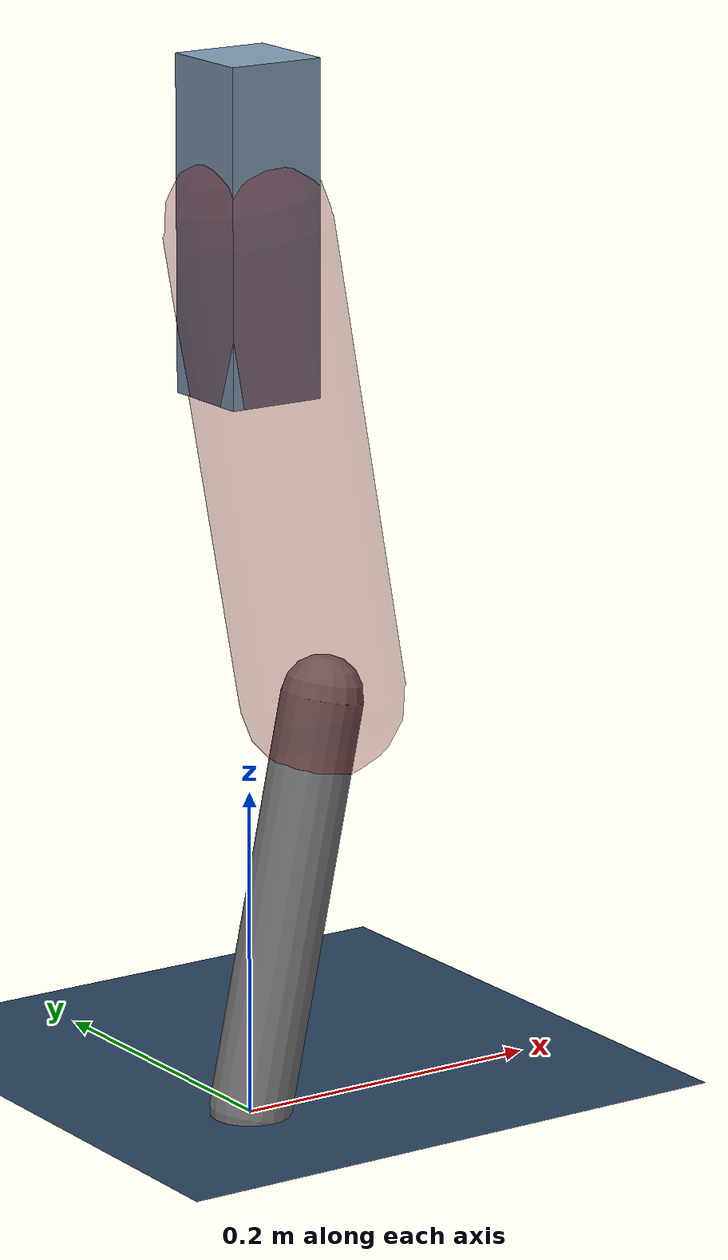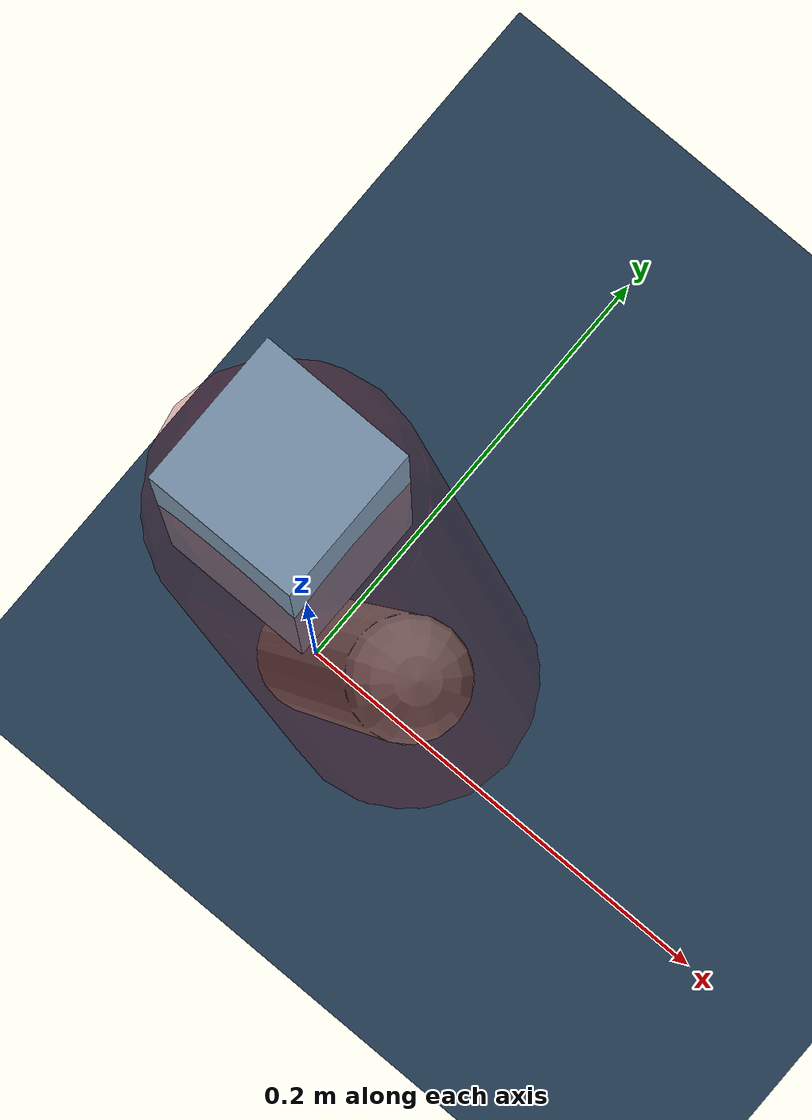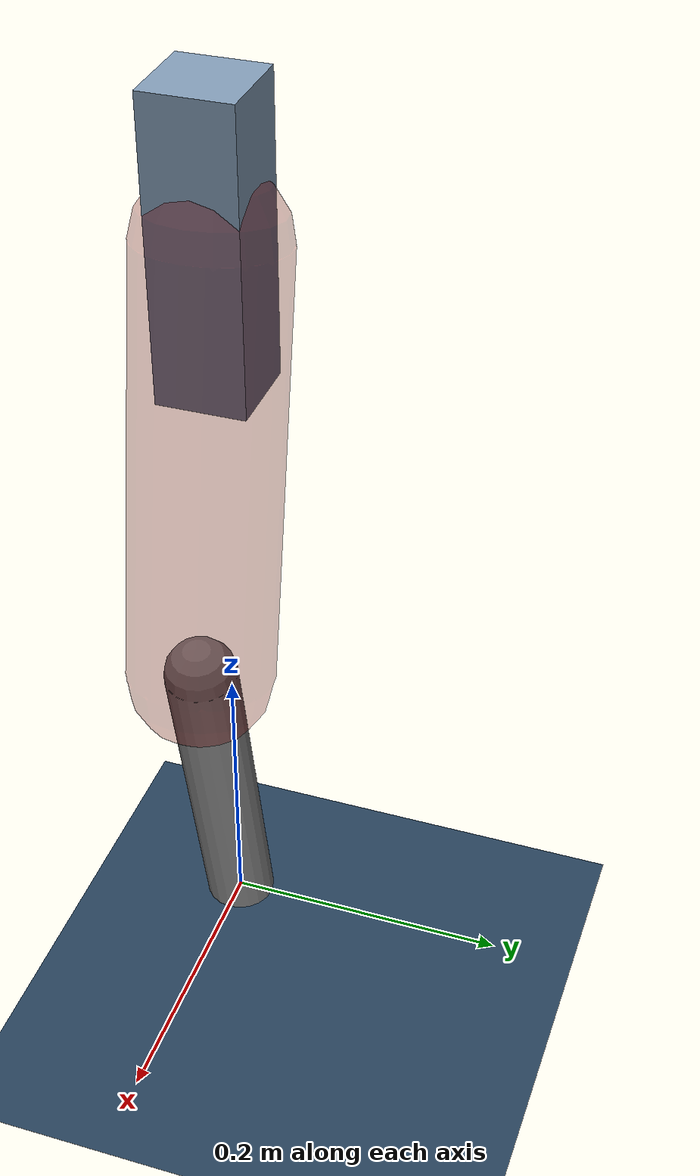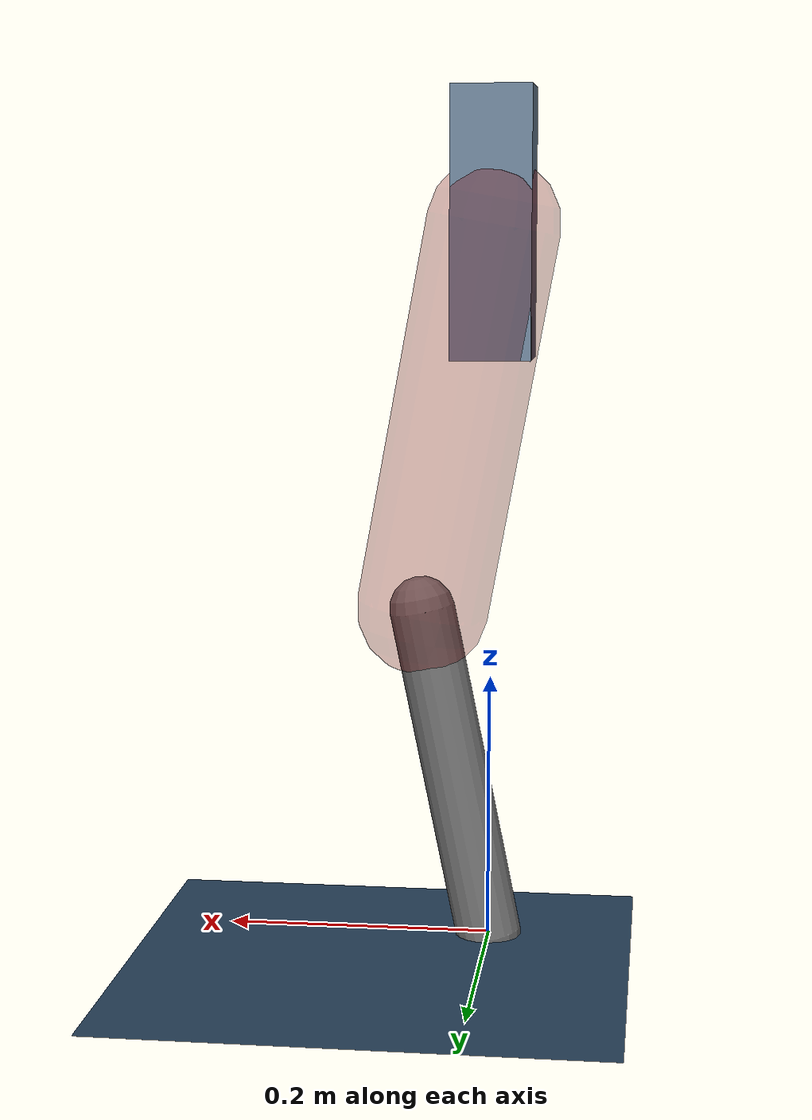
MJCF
<mujoco model="Hopper2D">
	<compiler inertiafromgeom="true" angle="radian" />
	<option timestep="0.001" integrator="implicit" cone="elliptic" solver="Newton" tolerance="1e-10" />

	<default>
		<geom contype="1" conaffinity="1" condim="3" friction="2 0.005 0.0001" solref="0.005 1" />
		<joint limited="true" damping="0.1" />
	</default>

	<asset>
		<texture name="skybox" type="skybox" builtin="gradient" rgb1=".4 .6 .8" rgb2="0 0 0" width="800" height="800" />
		<texture name="grid" type="2d" builtin="checker" rgb1=".1 .2 .3" rgb2=".2 .3 .4" width="300" height="300" mark="edge" markrgb=".2 .3 .4" />
		<material name="ground" texture="grid" texrepeat="1 1" texuniform="true" reflectance="0.1" />
		<material name="leg" rgba="0.5 0.6 0.7 1" />
	</asset>

	<worldbody>

		<geom name="floor" type="plane" size="5 5 0.25" material="ground" />

		<light directional="false" diffuse="0.8 0.8 0.8" specular="0.3 0.3 0.3" pos="0 0 2" dir="0 0 -1" />
		<light mode="targetbodycom" target="base" directional="false" diffuse="0.8 0.8 0.8" specular="0.3 0.3 0.3" pos="0 0 2" dir="0 0 -1" />

		<camera name="fixed" pos="0 -2 1" xyaxes="1 0 0 0 0 1" />
		<camera name="tracking" mode="trackcom" pos="0 -3 1" />

		<body name="root" pos="0 0 0.5410564249908898">
			<joint name="slide_x" type="slide" axis="1 0 0" range="-100 100" />
			<joint name="slide_z" type="slide" axis="0 0 1" range="0 10" />

			<body name="base" pos="0 0 0">
				<geom name="torso" type="box" size="0.03 0.03 0.1" mass="1.687" material="leg" />

				<body name="link1" pos="0 0 0" euler="0 1.392679528151662 0">
					<joint type="hinge" axis="0 -1 0" pos="0 0 0" name="hinge1" limited="true" range="-3.14 3.14" stiffness="0" damping="0.1" />
					<geom name="thigh" type="capsule" fromto="0 0 0 0.294211414437912 0 0" size="0.05" rgba="0.5 0 0 0.3" mass="0.9731708189823625" />

					<body name="link2" pos="0.294211414437912 0 0" euler="0 0.38248905852841275 0">
						<joint type="hinge" axis="0 -1 0" pos="0 0 0" name="hinge2" limited="true" range="-3.14 3.14" stiffness="0" damping="0.1" />
						<geom name="shank" type="capsule" fromto="0 0 0 0.25684501055297776 0 0" size="0.025" mass="0.4481760084423822" />

					</body>
				</body>
			</body>
		</body>
	</worldbody>

	<actuator>
		<motor name="torque1" joint="hinge1" ctrlrange="-56.250266143853025 56.250266143853025" ctrllimited="true" gear="1" />
		<motor name="torque2" joint="hinge2" ctrlrange="-48.50336858675164 48.50336858675164" ctrllimited="true" gear="1" />
	</actuator>
</mujoco>
